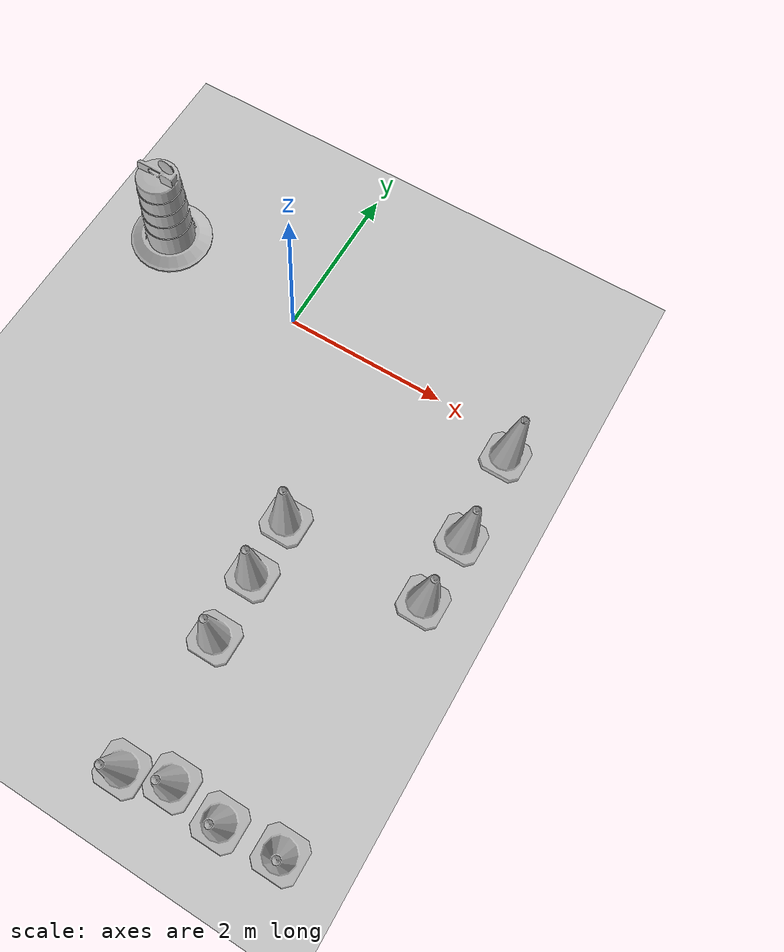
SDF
<sdf version="1.7">
 <world name="default">
  <light name="sun" type="directional">
   <pose>0 0 10 0 -0 0</pose>
   <diffuse>0.8 0.8 0.8 1</diffuse>
   <specular>0.2 0.2 0.2 1</specular>
   <attenuation>
    <range>1000</range>
    <constant>0.9</constant>
    <linear>0.01</linear>
    <quadratic>0.001</quadratic>
   </attenuation>
   <direction>-0.5 0.1 -0.9</direction>
   <spot><inner_angle>0</inner_angle><outer_angle>0</outer_angle><falloff>0</falloff></spot>
  </light>
  <model name="ground_plane">
   <static>1</static>
   <link name="link">
    <collision name="collision">
     <geometry><plane><normal>0 0 1</normal><size>100 100</size></plane></geometry>
     <surface>
      <contact><collide_bitmask>65535</collide_bitmask></contact>
      <friction><ode><mu>100</mu><mu2>50</mu2></ode></friction>
     </surface>
    </collision>
    <visual name="visual">
     <cast_shadows>0</cast_shadows>
     <geometry><plane><normal>0 0 1</normal><size>100 100</size></plane></geometry>
     <material>
      <script><uri>file://media/materials/scripts/gazebo.material</uri><name>Gazebo/Grey</name></script>
     </material>
    </visual>
   </link>
  </model>
  <gravity>0 0 -9.8</gravity>
  <magnetic_field>6e-06 2.3e-05 -4.2e-05</magnetic_field>
  <atmosphere type="adiabatic"/>
  <physics type="ode">
   <max_step_size>0.001</max_step_size>
   <real_time_factor>1</real_time_factor>
   <real_time_update_rate>1000</real_time_update_rate>
  </physics>
  <scene><ambient>0.4 0.4 0.4 1</ambient><background>0.7 0.7 0.7 1</background><shadows>1</shadows></scene>
  <audio><device>default</device></audio>
  <spherical_coordinates>
   <surface_model>EARTH_WGS84</surface_model>
   <latitude_deg>0</latitude_deg>
   <longitude_deg>0</longitude_deg>
   <elevation>0</elevation>
   <heading_deg>0</heading_deg>
  </spherical_coordinates>
  <model name="Construction Cone">
   <link name="link">
    <collision name="collision">
     <geometry>
      <mesh><scale>10 10 10</scale><uri>model://construction_cone/meshes/construction_cone.dae</uri></mesh>
     </geometry>
    </collision>
    <visual name="visual">
     <geometry>
      <mesh><scale>10 10 10</scale><uri>model://construction_cone/meshes/construction_cone.dae</uri></mesh>
     </geometry>
    </visual>
    <inertial>
     <inertia><ixx>1</ixx><ixy>0</ixy><ixz>0</ixz><iyy>1</iyy><iyz>0</iyz><izz>1</izz></inertia>
     <mass>1</mass>
    </inertial>
   </link>
   <pose>1.26847 -2.19604 -0 0 -0 0</pose>
  </model>
  <model name="Construction Barrel">
   <link name="link">
    <inertial>
     <pose>0 0 0.4 0 -0 0</pose>
     <mass>500</mass>
     <inertia><ixx>51.2096</ixx><iyy>51.2096</iyy><izz>25</izz><ixy>0</ixy><ixz>0</ixz><iyz>0</iyz></inertia>
    </inertial>
    <collision name="collision">
     <geometry><mesh><uri>model://construction_barrel/meshes/construction_barrel.dae</uri></mesh></geometry>
    </collision>
    <visual name="visual">
     <geometry><mesh><uri>model://construction_barrel/meshes/construction_barrel.dae</uri></mesh></geometry>
    </visual>
   </link>
   <pose>-1.93441 0.231162 -0 0 -0 -1.9e-05</pose>
  </model>
  <model name="Construction Cone_clone">
   <link name="link">
    <collision name="collision">
     <geometry>
      <mesh><scale>10 10 10</scale><uri>model://construction_cone/meshes/construction_cone.dae</uri></mesh>
     </geometry>
    </collision>
    <visual name="visual">
     <geometry>
      <mesh><scale>10 10 10</scale><uri>model://construction_cone/meshes/construction_cone.dae</uri></mesh>
     </geometry>
    </visual>
    <inertial>
     <inertia><ixx>1</ixx><ixy>0</ixy><ixz>0</ixz><iyy>1</iyy><iyz>0</iyz><izz>1</izz></inertia>
     <mass>1</mass>
    </inertial>
   </link>
   <pose>1.28087 -2.90523 -0 1e-06 -0 0</pose>
  </model>
  <model name="Construction Cone_clone_0">
   <link name="link">
    <collision name="collision">
     <geometry>
      <mesh><scale>10 10 10</scale><uri>model://construction_cone/meshes/construction_cone.dae</uri></mesh>
     </geometry>
    </collision>
    <visual name="visual">
     <geometry>
      <mesh><scale>10 10 10</scale><uri>model://construction_cone/meshes/construction_cone.dae</uri></mesh>
     </geometry>
    </visual>
    <inertial>
     <inertia><ixx>1</ixx><ixy>0</ixy><ixz>0</ixz><iyy>1</iyy><iyz>0</iyz><izz>1</izz></inertia>
     <mass>1</mass>
    </inertial>
   </link>
   <pose>1.30754 -3.68282 -0 0 -1e-06 0</pose>
  </model>
  <model name="Construction Cone_clone_1">
   <link name="link">
    <collision name="collision">
     <geometry>
      <mesh><scale>10 10 10</scale><uri>model://construction_cone/meshes/construction_cone.dae</uri></mesh>
     </geometry>
    </collision>
    <visual name="visual">
     <geometry>
      <mesh><scale>10 10 10</scale><uri>model://construction_cone/meshes/construction_cone.dae</uri></mesh>
     </geometry>
    </visual>
    <inertial>
     <inertia><ixx>1</ixx><ixy>0</ixy><ixz>0</ixz><iyy>1</iyy><iyz>0</iyz><izz>1</izz></inertia>
     <mass>1</mass>
    </inertial>
   </link>
   <pose>2.99126 -0.246429 -0 0 -1e-06 0</pose>
  </model>
  <model name="Construction Cone_clone_2">
   <link name="link">
    <collision name="collision">
     <geometry>
      <mesh><scale>10 10 10</scale><uri>model://construction_cone/meshes/construction_cone.dae</uri></mesh>
     </geometry>
    </collision>
    <visual name="visual">
     <geometry>
      <mesh><scale>10 10 10</scale><uri>model://construction_cone/meshes/construction_cone.dae</uri></mesh>
     </geometry>
    </visual>
    <inertial>
     <inertia><ixx>1</ixx><ixy>0</ixy><ixz>0</ixz><iyy>1</iyy><iyz>0</iyz><izz>1</izz></inertia>
     <mass>1</mass>
    </inertial>
   </link>
   <pose>3.02466 -1.36579 -1e-05 -1e-06 0 0</pose>
  </model>
  <model name="Construction Cone_clone_3">
   <link name="link">
    <collision name="collision">
     <geometry>
      <mesh><scale>10 10 10</scale><uri>model://construction_cone/meshes/construction_cone.dae</uri></mesh>
     </geometry>
    </collision>
    <visual name="visual">
     <geometry>
      <mesh><scale>10 10 10</scale><uri>model://construction_cone/meshes/construction_cone.dae</uri></mesh>
     </geometry>
    </visual>
    <inertial>
     <inertia><ixx>1</ixx><ixy>0</ixy><ixz>0</ixz><iyy>1</iyy><iyz>0</iyz><izz>1</izz></inertia>
     <mass>1</mass>
    </inertial>
   </link>
   <pose>3.00522 -2.1975 -0 0 -1e-06 0</pose>
  </model>
  <model name="Construction Cone_clone_4">
   <link name="link">
    <collision name="collision">
     <geometry>
      <mesh><scale>10 10 10</scale><uri>model://construction_cone/meshes/construction_cone.dae</uri></mesh>
     </geometry>
    </collision>
    <visual name="visual">
     <geometry>
      <mesh><scale>10 10 10</scale><uri>model://construction_cone/meshes/construction_cone.dae</uri></mesh>
     </geometry>
    </visual>
    <inertial>
     <inertia><ixx>1</ixx><ixy>0</ixy><ixz>0</ixz><iyy>1</iyy><iyz>0</iyz><izz>1</izz></inertia>
     <mass>1</mass>
    </inertial>
   </link>
   <pose>3.03324 -5.11997 -0 0 -0 0</pose>
  </model>
  <model name="Construction Cone_clone_5">
   <link name="link">
    <collision name="collision">
     <geometry>
      <mesh><scale>10 10 10</scale><uri>model://construction_cone/meshes/construction_cone.dae</uri></mesh>
     </geometry>
    </collision>
    <visual name="visual">
     <geometry>
      <mesh><scale>10 10 10</scale><uri>model://construction_cone/meshes/construction_cone.dae</uri></mesh>
     </geometry>
    </visual>
    <inertial>
     <inertia><ixx>1</ixx><ixy>0</ixy><ixz>0</ixz><iyy>1</iyy><iyz>0</iyz><izz>1</izz></inertia>
     <mass>1</mass>
    </inertial>
   </link>
   <pose>2.36573 -5.18311 -1e-05 -0 -0 -0</pose>
  </model>
  <model name="Construction Cone_clone_6">
   <link name="link">
    <collision name="collision">
     <geometry>
      <mesh><scale>10 10 10</scale><uri>model://construction_cone/meshes/construction_cone.dae</uri></mesh>
     </geometry>
    </collision>
    <visual name="visual">
     <geometry>
      <mesh><scale>10 10 10</scale><uri>model://construction_cone/meshes/construction_cone.dae</uri></mesh>
     </geometry>
    </visual>
    <inertial>
     <inertia><ixx>1</ixx><ixy>0</ixy><ixz>0</ixz><iyy>1</iyy><iyz>0</iyz><izz>1</izz></inertia>
     <mass>1</mass>
    </inertial>
   </link>
   <pose>1.74944 -5.12034 -0 0 -0 0</pose>
  </model>
  <model name="Construction Cone_clone_7">
   <link name="link">
    <collision name="collision">
     <geometry>
      <mesh><scale>10 10 10</scale><uri>model://construction_cone/meshes/construction_cone.dae</uri></mesh>
     </geometry>
    </collision>
    <visual name="visual">
     <geometry>
      <mesh><scale>10 10 10</scale><uri>model://construction_cone/meshes/construction_cone.dae</uri></mesh>
     </geometry>
    </visual>
    <inertial>
     <inertia><ixx>1</ixx><ixy>0</ixy><ixz>0</ixz><iyy>1</iyy><iyz>0</iyz><izz>1</izz></inertia>
     <mass>1</mass>
    </inertial>
   </link>
   <pose>1.24208 -5.27593 -0 0 -1e-06 0</pose>
  </model>
 </world>
</sdf>
